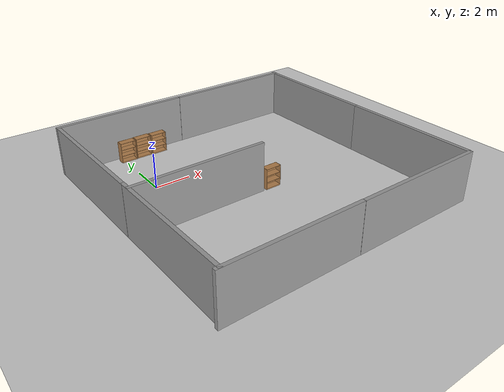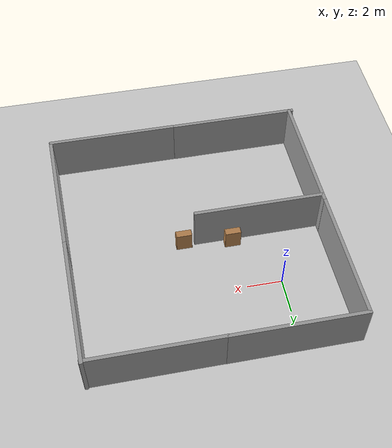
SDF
<sdf version="1.6">
 <world name="default">
  <light name="sun" type="directional">
   <pose>0 0 10 0 -0 0</pose>
   <diffuse>0.8 0.8 0.8 1</diffuse>
   <specular>0.2 0.2 0.2 1</specular>
   <attenuation>
    <range>1000</range>
    <constant>0.9</constant>
    <linear>0.01</linear>
    <quadratic>0.001</quadratic>
   </attenuation>
   <direction>-0.5 0.1 -0.9</direction>
  </light>
  <model name="ground_plane">
   <static>1</static>
   <link name="link">
    <collision name="collision">
     <geometry><plane><normal>0 0 1</normal><size>100 100</size></plane></geometry>
     <surface>
      <contact><collide_bitmask>65535</collide_bitmask></contact>
      <friction><ode><mu>100</mu><mu2>50</mu2></ode></friction>
     </surface>
    </collision>
    <visual name="visual">
     <cast_shadows>0</cast_shadows>
     <geometry><plane><normal>0 0 1</normal><size>100 100</size></plane></geometry>
     <material>
      <script><uri>file://media/materials/scripts/gazebo.material</uri><name>Gazebo/Grey</name></script>
     </material>
    </visual>
   </link>
  </model>
  <gravity>0 0 -9.8</gravity>
  <magnetic_field>6e-06 2.3e-05 -4.2e-05</magnetic_field>
  <atmosphere type="adiabatic"/>
  <physics name="default_physics" default="0" type="ode">
   <max_step_size>0.001</max_step_size>
   <real_time_factor>1</real_time_factor>
   <real_time_update_rate>1000</real_time_update_rate>
  </physics>
  <scene><ambient>0.4 0.4 0.4 1</ambient><background>0.7 0.7 0.7 1</background><shadows>1</shadows></scene>
  <spherical_coordinates>
   <surface_model>EARTH_WGS84</surface_model>
   <latitude_deg>0</latitude_deg>
   <longitude_deg>0</longitude_deg>
   <elevation>0</elevation>
   <heading_deg>0</heading_deg>
  </spherical_coordinates>
  <model name="grey_wall">
   <static>1</static>
   <link name="link">
    <pose>0 0 1.4 0 -0 0</pose>
    <collision name="collision"><geometry><box><size>7.5 0.2 2.8</size></box></geometry></collision>
    <visual name="visual">
     <cast_shadows>0</cast_shadows>
     <geometry><box><size>7.5 0.2 2.8</size></box></geometry>
     <material>
      <script>
       <uri>model://grey_wall/materials/scripts</uri>
       <uri>model://grey_wall/materials/textures</uri>
       <name>vrc/grey_wall</name>
      </script>
     </material>
    </visual>
   </link>
   <pose>0.42075 4.37115 0 0 -0 0</pose>
  </model>
  <model name="grey_wall_0">
   <static>1</static>
   <link name="link">
    <pose>0 0 1.4 0 -0 0</pose>
    <collision name="collision"><geometry><box><size>7.5 0.2 2.8</size></box></geometry></collision>
    <visual name="visual">
     <cast_shadows>0</cast_shadows>
     <geometry><box><size>7.5 0.2 2.8</size></box></geometry>
     <material>
      <script>
       <uri>model://grey_wall/materials/scripts</uri>
       <uri>model://grey_wall/materials/textures</uri>
       <name>vrc/grey_wall</name>
      </script>
     </material>
    </visual>
   </link>
   <pose>7.84753 4.35937 0 0 -0 0</pose>
  </model>
  <model name="grey_wall_1">
   <static>1</static>
   <link name="link">
    <pose>0 0 1.4 0 -0 0</pose>
    <collision name="collision"><geometry><box><size>7.5 0.2 2.8</size></box></geometry></collision>
    <visual name="visual">
     <cast_shadows>0</cast_shadows>
     <geometry><box><size>7.5 0.2 2.8</size></box></geometry>
     <material>
      <script>
       <uri>model://grey_wall/materials/scripts</uri>
       <uri>model://grey_wall/materials/textures</uri>
       <name>vrc/grey_wall</name>
      </script>
     </material>
    </visual>
   </link>
   <pose>-3.15132 0.5788 0 0 0 -1.55133</pose>
  </model>
  <model name="grey_wall_1_clone">
   <static>1</static>
   <link name="link">
    <pose>0 0 1.4 0 -0 0</pose>
    <collision name="collision"><geometry><box><size>7.5 0.2 2.8</size></box></geometry></collision>
    <visual name="visual">
     <cast_shadows>0</cast_shadows>
     <geometry><box><size>7.5 0.2 2.8</size></box></geometry>
     <material>
      <script>
       <uri>model://grey_wall/materials/scripts</uri>
       <uri>model://grey_wall/materials/textures</uri>
       <name>vrc/grey_wall</name>
      </script>
     </material>
    </visual>
   </link>
   <pose>-3.00117 -6.76849 0 0 0 -1.55133</pose>
  </model>
  <model name="grey_wall_1_clone_0">
   <static>1</static>
   <link name="link">
    <pose>0 0 1.4 0 -0 0</pose>
    <collision name="collision"><geometry><box><size>7.5 0.2 2.8</size></box></geometry></collision>
    <visual name="visual">
     <cast_shadows>0</cast_shadows>
     <geometry><box><size>7.5 0.2 2.8</size></box></geometry>
     <material>
      <script>
       <uri>model://grey_wall/materials/scripts</uri>
       <uri>model://grey_wall/materials/textures</uri>
       <name>vrc/grey_wall</name>
      </script>
     </material>
    </visual>
   </link>
   <pose>11.5431 0.784221 0 0 0 -1.55133</pose>
  </model>
  <model name="grey_wall_1_clone_1">
   <static>1</static>
   <link name="link">
    <pose>0 0 1.4 0 -0 0</pose>
    <collision name="collision"><geometry><box><size>7.5 0.2 2.8</size></box></geometry></collision>
    <visual name="visual">
     <cast_shadows>0</cast_shadows>
     <geometry><box><size>7.5 0.2 2.8</size></box></geometry>
     <material>
      <script>
       <uri>model://grey_wall/materials/scripts</uri>
       <uri>model://grey_wall/materials/textures</uri>
       <name>vrc/grey_wall</name>
      </script>
     </material>
    </visual>
   </link>
   <pose>11.6857 -6.71282 0 0 0 -1.55133</pose>
  </model>
  <model name="grey_wall_2">
   <static>1</static>
   <link name="link">
    <pose>0 0 1.4 0 -0 0</pose>
    <collision name="collision"><geometry><box><size>7.5 0.2 2.8</size></box></geometry></collision>
    <visual name="visual">
     <cast_shadows>0</cast_shadows>
     <geometry><box><size>7.5 0.2 2.8</size></box></geometry>
     <material>
      <script>
       <uri>model://grey_wall/materials/scripts</uri>
       <uri>model://grey_wall/materials/textures</uri>
       <name>vrc/grey_wall</name>
      </script>
     </material>
    </visual>
   </link>
   <pose>0.57934 -10.4446 0 0 -0 0</pose>
  </model>
  <model name="grey_wall_3">
   <static>1</static>
   <link name="link">
    <pose>0 0 1.4 0 -0 0</pose>
    <collision name="collision"><geometry><box><size>7.5 0.2 2.8</size></box></geometry></collision>
    <visual name="visual">
     <cast_shadows>0</cast_shadows>
     <geometry><box><size>7.5 0.2 2.8</size></box></geometry>
     <material>
      <script>
       <uri>model://grey_wall/materials/scripts</uri>
       <uri>model://grey_wall/materials/textures</uri>
       <name>vrc/grey_wall</name>
      </script>
     </material>
    </visual>
   </link>
   <pose>8.07788 -10.4556 0 0 -0 0</pose>
  </model>
  <model name="grey_wall_4">
   <static>1</static>
   <link name="link">
    <pose>0 0 1.4 0 -0 0</pose>
    <collision name="collision"><geometry><box><size>7.5 0.2 2.8</size></box></geometry></collision>
    <visual name="visual">
     <cast_shadows>0</cast_shadows>
     <geometry><box><size>7.5 0.2 2.8</size></box></geometry>
     <material>
      <script>
       <uri>model://grey_wall/materials/scripts</uri>
       <uri>model://grey_wall/materials/textures</uri>
       <name>vrc/grey_wall</name>
      </script>
     </material>
    </visual>
   </link>
   <pose>0.60817 -3.55322 0 0 -0 0</pose>
  </model>
  <model name="bookshelf">
   <static>1</static>
   <link name="link">
    <inertial><mass>1</mass></inertial>
    <collision name="back">
     <pose>0 0.005 0.6 0 -0 0</pose>
     <geometry><box><size>0.9 0.01 1.2</size></box></geometry>
    </collision>
    <visual name="visual1">
     <pose>0 0.005 0.6 0 -0 0</pose>
     <geometry><box><size>0.9 0.01 1.2</size></box></geometry>
     <material>
      <script><uri>file://media/materials/scripts/gazebo.material</uri><name>Gazebo/Wood</name></script>
     </material>
    </visual>
    <collision name="left_side">
     <pose>0.45 -0.195 0.6 0 -0 0</pose>
     <geometry><box><size>0.02 0.4 1.2</size></box></geometry>
    </collision>
    <visual name="visual2">
     <pose>0.45 -0.195 0.6 0 -0 0</pose>
     <geometry><box><size>0.02 0.4 1.2</size></box></geometry>
     <material>
      <script><uri>file://media/materials/scripts/gazebo.material</uri><name>Gazebo/Wood</name></script>
     </material>
    </visual>
    <collision name="right_side">
     <pose>-0.45 -0.195 0.6 0 -0 0</pose>
     <geometry><box><size>0.02 0.4 1.2</size></box></geometry>
    </collision>
    <visual name="visual3">
     <pose>-0.45 -0.195 0.6 0 -0 0</pose>
     <geometry><box><size>0.02 0.4 1.2</size></box></geometry>
     <material>
      <script><uri>file://media/materials/scripts/gazebo.material</uri><name>Gazebo/Wood</name></script>
     </material>
    </visual>
    <collision name="bottom">
     <pose>0 -0.195 0.03 0 -0 0</pose>
     <geometry><box><size>0.88 0.4 0.06</size></box></geometry>
    </collision>
    <visual name="visual4">
     <pose>0 -0.195 0.03 0 -0 0</pose>
     <geometry><box><size>0.88 0.4 0.06</size></box></geometry>
     <material>
      <script><uri>file://media/materials/scripts/gazebo.material</uri><name>Gazebo/Wood</name></script>
     </material>
    </visual>
    <collision name="top">
     <pose>0 -0.195 1.19 0 -0 0</pose>
     <geometry><box><size>0.88 0.4 0.02</size></box></geometry>
    </collision>
    <visual name="visual5">
     <pose>0 -0.195 1.19 0 -0 0</pose>
     <geometry><box><size>0.88 0.4 0.02</size></box></geometry>
     <material>
      <script><uri>file://media/materials/scripts/gazebo.material</uri><name>Gazebo/Wood</name></script>
     </material>
    </visual>
    <collision name="low_shelf">
     <pose>0 -0.195 0.43 0 -0 0</pose>
     <geometry><box><size>0.88 0.4 0.02</size></box></geometry>
    </collision>
    <visual name="visual6">
     <pose>0 -0.195 0.43 0 -0 0</pose>
     <geometry><box><size>0.88 0.4 0.02</size></box></geometry>
     <material>
      <script><uri>file://media/materials/scripts/gazebo.material</uri><name>Gazebo/Wood</name></script>
     </material>
    </visual>
    <collision name="high_shelf">
     <pose>0 -0.195 0.8 0 -0 0</pose>
     <geometry><box><size>0.88 0.4 0.02</size></box></geometry>
    </collision>
    <visual name="visual7">
     <pose>0 -0.195 0.8 0 -0 0</pose>
     <geometry><box><size>0.88 0.4 0.02</size></box></geometry>
     <material>
      <script><uri>file://media/materials/scripts/gazebo.material</uri><name>Gazebo/Wood</name></script>
     </material>
    </visual>
   </link>
   <pose>1.22485 4.04661 0 0 -0 0</pose>
  </model>
  <model name="bookshelf_0">
   <static>1</static>
   <link name="link">
    <inertial><mass>1</mass></inertial>
    <collision name="back">
     <pose>0 0.005 0.6 0 -0 0</pose>
     <geometry><box><size>0.9 0.01 1.2</size></box></geometry>
    </collision>
    <visual name="visual1">
     <pose>0 0.005 0.6 0 -0 0</pose>
     <geometry><box><size>0.9 0.01 1.2</size></box></geometry>
     <material>
      <script><uri>file://media/materials/scripts/gazebo.material</uri><name>Gazebo/Wood</name></script>
     </material>
    </visual>
    <collision name="left_side">
     <pose>0.45 -0.195 0.6 0 -0 0</pose>
     <geometry><box><size>0.02 0.4 1.2</size></box></geometry>
    </collision>
    <visual name="visual2">
     <pose>0.45 -0.195 0.6 0 -0 0</pose>
     <geometry><box><size>0.02 0.4 1.2</size></box></geometry>
     <material>
      <script><uri>file://media/materials/scripts/gazebo.material</uri><name>Gazebo/Wood</name></script>
     </material>
    </visual>
    <collision name="right_side">
     <pose>-0.45 -0.195 0.6 0 -0 0</pose>
     <geometry><box><size>0.02 0.4 1.2</size></box></geometry>
    </collision>
    <visual name="visual3">
     <pose>-0.45 -0.195 0.6 0 -0 0</pose>
     <geometry><box><size>0.02 0.4 1.2</size></box></geometry>
     <material>
      <script><uri>file://media/materials/scripts/gazebo.material</uri><name>Gazebo/Wood</name></script>
     </material>
    </visual>
    <collision name="bottom">
     <pose>0 -0.195 0.03 0 -0 0</pose>
     <geometry><box><size>0.88 0.4 0.06</size></box></geometry>
    </collision>
    <visual name="visual4">
     <pose>0 -0.195 0.03 0 -0 0</pose>
     <geometry><box><size>0.88 0.4 0.06</size></box></geometry>
     <material>
      <script><uri>file://media/materials/scripts/gazebo.material</uri><name>Gazebo/Wood</name></script>
     </material>
    </visual>
    <collision name="top">
     <pose>0 -0.195 1.19 0 -0 0</pose>
     <geometry><box><size>0.88 0.4 0.02</size></box></geometry>
    </collision>
    <visual name="visual5">
     <pose>0 -0.195 1.19 0 -0 0</pose>
     <geometry><box><size>0.88 0.4 0.02</size></box></geometry>
     <material>
      <script><uri>file://media/materials/scripts/gazebo.material</uri><name>Gazebo/Wood</name></script>
     </material>
    </visual>
    <collision name="low_shelf">
     <pose>0 -0.195 0.43 0 -0 0</pose>
     <geometry><box><size>0.88 0.4 0.02</size></box></geometry>
    </collision>
    <visual name="visual6">
     <pose>0 -0.195 0.43 0 -0 0</pose>
     <geometry><box><size>0.88 0.4 0.02</size></box></geometry>
     <material>
      <script><uri>file://media/materials/scripts/gazebo.material</uri><name>Gazebo/Wood</name></script>
     </material>
    </visual>
    <collision name="high_shelf">
     <pose>0 -0.195 0.8 0 -0 0</pose>
     <geometry><box><size>0.88 0.4 0.02</size></box></geometry>
    </collision>
    <visual name="visual7">
     <pose>0 -0.195 0.8 0 -0 0</pose>
     <geometry><box><size>0.88 0.4 0.02</size></box></geometry>
     <material>
      <script><uri>file://media/materials/scripts/gazebo.material</uri><name>Gazebo/Wood</name></script>
     </material>
    </visual>
   </link>
   <pose>2.18595 -2.93876 0 0 -0 0</pose>
  </model>
  <model name="bookshelf_1">
   <static>1</static>
   <link name="link">
    <inertial><mass>1</mass></inertial>
    <collision name="back">
     <pose>0 0.005 0.6 0 -0 0</pose>
     <geometry><box><size>0.9 0.01 1.2</size></box></geometry>
    </collision>
    <visual name="visual1">
     <pose>0 0.005 0.6 0 -0 0</pose>
     <geometry><box><size>0.9 0.01 1.2</size></box></geometry>
     <material>
      <script><uri>file://media/materials/scripts/gazebo.material</uri><name>Gazebo/Wood</name></script>
     </material>
    </visual>
    <collision name="left_side">
     <pose>0.45 -0.195 0.6 0 -0 0</pose>
     <geometry><box><size>0.02 0.4 1.2</size></box></geometry>
    </collision>
    <visual name="visual2">
     <pose>0.45 -0.195 0.6 0 -0 0</pose>
     <geometry><box><size>0.02 0.4 1.2</size></box></geometry>
     <material>
      <script><uri>file://media/materials/scripts/gazebo.material</uri><name>Gazebo/Wood</name></script>
     </material>
    </visual>
    <collision name="right_side">
     <pose>-0.45 -0.195 0.6 0 -0 0</pose>
     <geometry><box><size>0.02 0.4 1.2</size></box></geometry>
    </collision>
    <visual name="visual3">
     <pose>-0.45 -0.195 0.6 0 -0 0</pose>
     <geometry><box><size>0.02 0.4 1.2</size></box></geometry>
     <material>
      <script><uri>file://media/materials/scripts/gazebo.material</uri><name>Gazebo/Wood</name></script>
     </material>
    </visual>
    <collision name="bottom">
     <pose>0 -0.195 0.03 0 -0 0</pose>
     <geometry><box><size>0.88 0.4 0.06</size></box></geometry>
    </collision>
    <visual name="visual4">
     <pose>0 -0.195 0.03 0 -0 0</pose>
     <geometry><box><size>0.88 0.4 0.06</size></box></geometry>
     <material>
      <script><uri>file://media/materials/scripts/gazebo.material</uri><name>Gazebo/Wood</name></script>
     </material>
    </visual>
    <collision name="top">
     <pose>0 -0.195 1.19 0 -0 0</pose>
     <geometry><box><size>0.88 0.4 0.02</size></box></geometry>
    </collision>
    <visual name="visual5">
     <pose>0 -0.195 1.19 0 -0 0</pose>
     <geometry><box><size>0.88 0.4 0.02</size></box></geometry>
     <material>
      <script><uri>file://media/materials/scripts/gazebo.material</uri><name>Gazebo/Wood</name></script>
     </material>
    </visual>
    <collision name="low_shelf">
     <pose>0 -0.195 0.43 0 -0 0</pose>
     <geometry><box><size>0.88 0.4 0.02</size></box></geometry>
    </collision>
    <visual name="visual6">
     <pose>0 -0.195 0.43 0 -0 0</pose>
     <geometry><box><size>0.88 0.4 0.02</size></box></geometry>
     <material>
      <script><uri>file://media/materials/scripts/gazebo.material</uri><name>Gazebo/Wood</name></script>
     </material>
    </visual>
    <collision name="high_shelf">
     <pose>0 -0.195 0.8 0 -0 0</pose>
     <geometry><box><size>0.88 0.4 0.02</size></box></geometry>
    </collision>
    <visual name="visual7">
     <pose>0 -0.195 0.8 0 -0 0</pose>
     <geometry><box><size>0.88 0.4 0.02</size></box></geometry>
     <material>
      <script><uri>file://media/materials/scripts/gazebo.material</uri><name>Gazebo/Wood</name></script>
     </material>
    </visual>
   </link>
   <pose>4.97539 -3.29038 0 0 -0 0</pose>
  </model>
  <model name="bookshelf_2">
   <static>1</static>
   <link name="link">
    <inertial><mass>1</mass></inertial>
    <collision name="back">
     <pose>0 0.005 0.6 0 -0 0</pose>
     <geometry><box><size>0.9 0.01 1.2</size></box></geometry>
    </collision>
    <visual name="visual1">
     <pose>0 0.005 0.6 0 -0 0</pose>
     <geometry><box><size>0.9 0.01 1.2</size></box></geometry>
     <material>
      <script><uri>file://media/materials/scripts/gazebo.material</uri><name>Gazebo/Wood</name></script>
     </material>
    </visual>
    <collision name="left_side">
     <pose>0.45 -0.195 0.6 0 -0 0</pose>
     <geometry><box><size>0.02 0.4 1.2</size></box></geometry>
    </collision>
    <visual name="visual2">
     <pose>0.45 -0.195 0.6 0 -0 0</pose>
     <geometry><box><size>0.02 0.4 1.2</size></box></geometry>
     <material>
      <script><uri>file://media/materials/scripts/gazebo.material</uri><name>Gazebo/Wood</name></script>
     </material>
    </visual>
    <collision name="right_side">
     <pose>-0.45 -0.195 0.6 0 -0 0</pose>
     <geometry><box><size>0.02 0.4 1.2</size></box></geometry>
    </collision>
    <visual name="visual3">
     <pose>-0.45 -0.195 0.6 0 -0 0</pose>
     <geometry><box><size>0.02 0.4 1.2</size></box></geometry>
     <material>
      <script><uri>file://media/materials/scripts/gazebo.material</uri><name>Gazebo/Wood</name></script>
     </material>
    </visual>
    <collision name="bottom">
     <pose>0 -0.195 0.03 0 -0 0</pose>
     <geometry><box><size>0.88 0.4 0.06</size></box></geometry>
    </collision>
    <visual name="visual4">
     <pose>0 -0.195 0.03 0 -0 0</pose>
     <geometry><box><size>0.88 0.4 0.06</size></box></geometry>
     <material>
      <script><uri>file://media/materials/scripts/gazebo.material</uri><name>Gazebo/Wood</name></script>
     </material>
    </visual>
    <collision name="top">
     <pose>0 -0.195 1.19 0 -0 0</pose>
     <geometry><box><size>0.88 0.4 0.02</size></box></geometry>
    </collision>
    <visual name="visual5">
     <pose>0 -0.195 1.19 0 -0 0</pose>
     <geometry><box><size>0.88 0.4 0.02</size></box></geometry>
     <material>
      <script><uri>file://media/materials/scripts/gazebo.material</uri><name>Gazebo/Wood</name></script>
     </material>
    </visual>
    <collision name="low_shelf">
     <pose>0 -0.195 0.43 0 -0 0</pose>
     <geometry><box><size>0.88 0.4 0.02</size></box></geometry>
    </collision>
    <visual name="visual6">
     <pose>0 -0.195 0.43 0 -0 0</pose>
     <geometry><box><size>0.88 0.4 0.02</size></box></geometry>
     <material>
      <script><uri>file://media/materials/scripts/gazebo.material</uri><name>Gazebo/Wood</name></script>
     </material>
    </visual>
    <collision name="high_shelf">
     <pose>0 -0.195 0.8 0 -0 0</pose>
     <geometry><box><size>0.88 0.4 0.02</size></box></geometry>
    </collision>
    <visual name="visual7">
     <pose>0 -0.195 0.8 0 -0 0</pose>
     <geometry><box><size>0.88 0.4 0.02</size></box></geometry>
     <material>
      <script><uri>file://media/materials/scripts/gazebo.material</uri><name>Gazebo/Wood</name></script>
     </material>
    </visual>
   </link>
   <pose>0.263793 4.02317 0 0 -0 0</pose>
  </model>
  <model name="bookshelf_3">
   <static>1</static>
   <link name="link">
    <inertial><mass>1</mass></inertial>
    <collision name="back">
     <pose>0 0.005 0.6 0 -0 0</pose>
     <geometry><box><size>0.9 0.01 1.2</size></box></geometry>
    </collision>
    <visual name="visual1">
     <pose>0 0.005 0.6 0 -0 0</pose>
     <geometry><box><size>0.9 0.01 1.2</size></box></geometry>
     <material>
      <script><uri>file://media/materials/scripts/gazebo.material</uri><name>Gazebo/Wood</name></script>
     </material>
    </visual>
    <collision name="left_side">
     <pose>0.45 -0.195 0.6 0 -0 0</pose>
     <geometry><box><size>0.02 0.4 1.2</size></box></geometry>
    </collision>
    <visual name="visual2">
     <pose>0.45 -0.195 0.6 0 -0 0</pose>
     <geometry><box><size>0.02 0.4 1.2</size></box></geometry>
     <material>
      <script><uri>file://media/materials/scripts/gazebo.material</uri><name>Gazebo/Wood</name></script>
     </material>
    </visual>
    <collision name="right_side">
     <pose>-0.45 -0.195 0.6 0 -0 0</pose>
     <geometry><box><size>0.02 0.4 1.2</size></box></geometry>
    </collision>
    <visual name="visual3">
     <pose>-0.45 -0.195 0.6 0 -0 0</pose>
     <geometry><box><size>0.02 0.4 1.2</size></box></geometry>
     <material>
      <script><uri>file://media/materials/scripts/gazebo.material</uri><name>Gazebo/Wood</name></script>
     </material>
    </visual>
    <collision name="bottom">
     <pose>0 -0.195 0.03 0 -0 0</pose>
     <geometry><box><size>0.88 0.4 0.06</size></box></geometry>
    </collision>
    <visual name="visual4">
     <pose>0 -0.195 0.03 0 -0 0</pose>
     <geometry><box><size>0.88 0.4 0.06</size></box></geometry>
     <material>
      <script><uri>file://media/materials/scripts/gazebo.material</uri><name>Gazebo/Wood</name></script>
     </material>
    </visual>
    <collision name="top">
     <pose>0 -0.195 1.19 0 -0 0</pose>
     <geometry><box><size>0.88 0.4 0.02</size></box></geometry>
    </collision>
    <visual name="visual5">
     <pose>0 -0.195 1.19 0 -0 0</pose>
     <geometry><box><size>0.88 0.4 0.02</size></box></geometry>
     <material>
      <script><uri>file://media/materials/scripts/gazebo.material</uri><name>Gazebo/Wood</name></script>
     </material>
    </visual>
    <collision name="low_shelf">
     <pose>0 -0.195 0.43 0 -0 0</pose>
     <geometry><box><size>0.88 0.4 0.02</size></box></geometry>
    </collision>
    <visual name="visual6">
     <pose>0 -0.195 0.43 0 -0 0</pose>
     <geometry><box><size>0.88 0.4 0.02</size></box></geometry>
     <material>
      <script><uri>file://media/materials/scripts/gazebo.material</uri><name>Gazebo/Wood</name></script>
     </material>
    </visual>
    <collision name="high_shelf">
     <pose>0 -0.195 0.8 0 -0 0</pose>
     <geometry><box><size>0.88 0.4 0.02</size></box></geometry>
    </collision>
    <visual name="visual7">
     <pose>0 -0.195 0.8 0 -0 0</pose>
     <geometry><box><size>0.88 0.4 0.02</size></box></geometry>
     <material>
      <script><uri>file://media/materials/scripts/gazebo.material</uri><name>Gazebo/Wood</name></script>
     </material>
    </visual>
   </link>
   <pose>2.18595 3.99973 0 0 -0 0</pose>
  </model>
  <light name="user_point_light_0" type="point">
   <pose>4.63191 -1.64546 1 0 -0 0</pose>
   <diffuse>0.5 0.5 0.5 1</diffuse>
   <specular>0.1 0.1 0.1 1</specular>
   <attenuation>
    <range>20</range>
    <constant>0.5</constant>
    <linear>0.01</linear>
    <quadratic>0.001</quadratic>
   </attenuation>
   <cast_shadows>0</cast_shadows>
   <direction>0 0 -1</direction>
  </light>
 </world>
</sdf>
